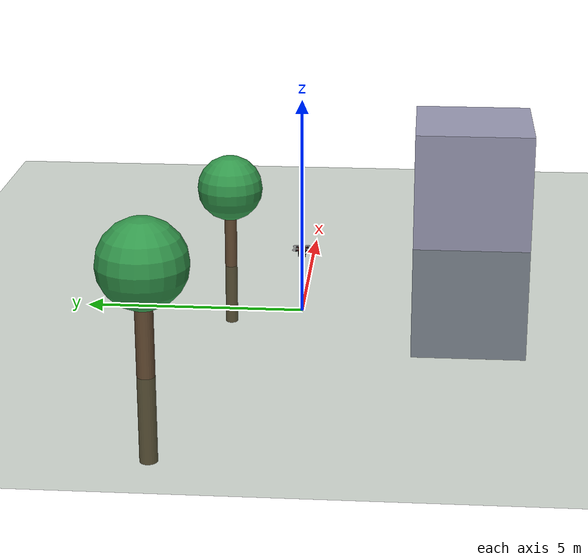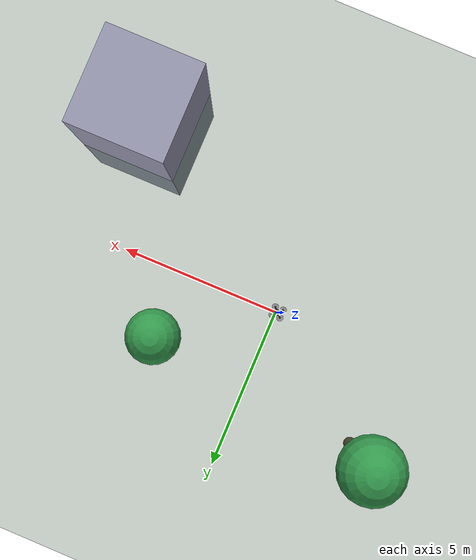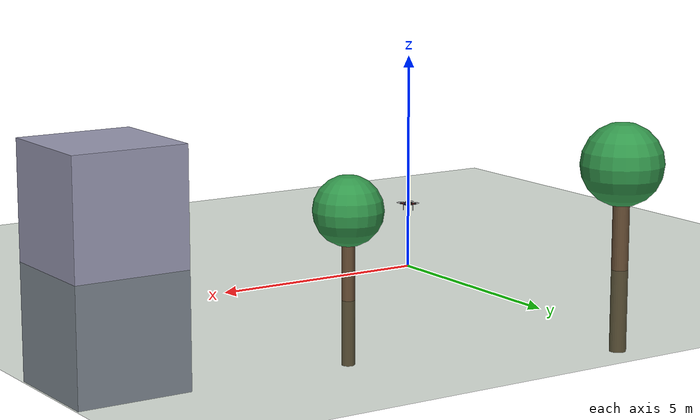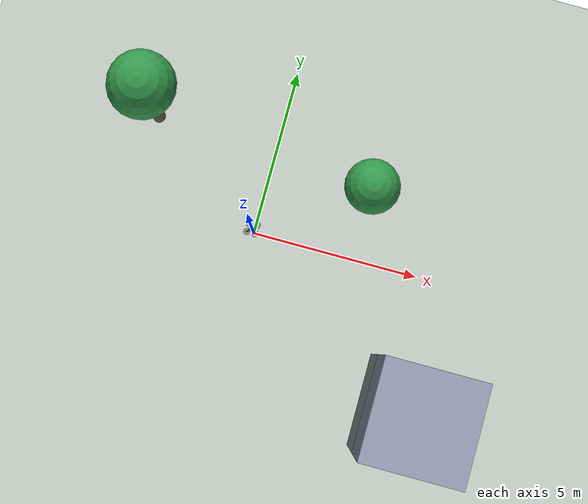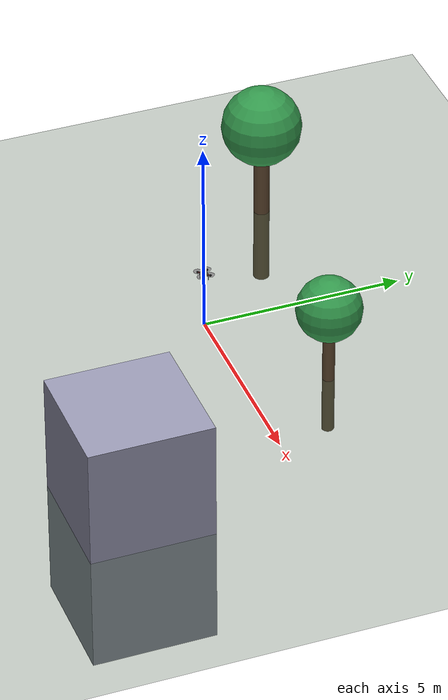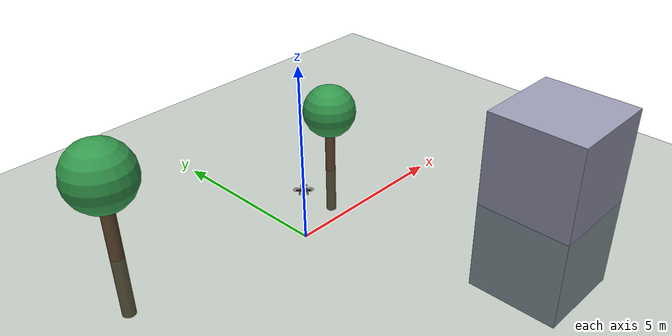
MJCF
<mujoco model="quadcopter_drone">
  <compiler angle="radian" coordinate="local" inertiafromgeom="true"/>

  <option timestep="0.002" gravity="0 0 -9.81" integrator="RK4">
    <flag warmstart="enable"/>
  </option>

  <visual>
    <rgba haze="0.15 0.25 0.35 1"/>
    <quality shadowsize="2048"/>
    <map stiffness="700"/>
  </visual>

  <asset>
    <!-- Textures for environment -->
    <texture type="skybox" builtin="gradient" rgb1="0.3 0.5 0.7" rgb2="0.1 0.2 0.3" width="512" height="512"/>
    <texture name="grid" type="2d" builtin="checker" rgb1="0.2 0.3 0.2" rgb2="0.3 0.4 0.3" width="512" height="512" mark="edge" markrgb="0.2 0.3 0.2"/>
    <texture name="grass" type="2d" builtin="flat" rgb1="0.3 0.5 0.3" width="512" height="512"/>

    <material name="grid" texture="grid" texrepeat="10 10" texuniform="true" reflectance="0.1"/>
    <material name="grass" texture="grass" texrepeat="20 20"/>
    <material name="drone_body" rgba="0.2 0.2 0.2 1" specular="0.5" shininess="0.3"/>
    <material name="drone_arm" rgba="0.8 0.1 0.1 1" specular="0.3" shininess="0.1"/>
    <material name="rotor" rgba="0.1 0.1 0.1 0.7" specular="0.8" shininess="0.5"/>
  </asset>

  <worldbody>
    <!-- Lighting -->
    <light directional="true" pos="0 0 10" dir="0 0 -1" diffuse="0.8 0.8 0.8" specular="0.2 0.2 0.2"/>
    <light directional="true" pos="5 5 10" dir="-1 -1 -2" diffuse="0.4 0.4 0.5"/>

    <!-- Ground plane -->
    <geom name="floor" type="plane" size="50 50 0.1" material="grid" condim="3" friction="1 0.5 0.005"/>

    <!-- Environment obstacles/landmarks -->
    <body name="tree1" pos="3 2 0">
      <geom type="cylinder" size="0.15 1.5" rgba="0.4 0.3 0.2 1" mass="0"/>
      <geom type="sphere" size="0.8" pos="0 0 2" rgba="0.2 0.6 0.3 1" mass="0"/>
    </body>

    <body name="tree2" pos="-4 3 0">
      <geom type="cylinder" size="0.2 2" rgba="0.4 0.3 0.2 1" mass="0"/>
      <geom type="sphere" size="1" pos="0 0 2.5" rgba="0.2 0.6 0.3 1" mass="0"/>
    </body>

    <body name="building" pos="6 -4 0">
      <geom type="box" size="1.5 1.5 3" rgba="0.6 0.6 0.7 1" mass="0"/>
    </body>

    <!-- Drone body -->
    <body name="drone" pos="0 0 1.5">
      <!-- Central body -->
      <freejoint name="drone_joint"/>
      <geom name="body_center" type="box" size="0.08 0.08 0.03" mass="0.4" material="drone_body"/>

      <!-- Camera mount (front indicator) -->
      <geom name="camera" type="cylinder" size="0.02 0.015" pos="0.09 0 0" quat="0.707 0 0.707 0" rgba="0.1 0.1 0.8 1" mass="0.05"/>

      <!-- Arms with motors -->
      <!-- Front-right arm -->
      <body name="arm1" pos="0.12 0.12 0">
        <geom name="arm1_geom" type="capsule" fromto="0 0 0 -0.12 -0.12 0" size="0.015" material="drone_arm" mass="0.08"/>
        <geom name="motor1" type="cylinder" size="0.025 0.015" pos="0 0 0" rgba="0.3 0.3 0.3 1" mass="0.05"/>
        <geom name="rotor1_geom" type="cylinder" size="0.1 0.002" pos="0 0 0.02" rgba="0.1 0.1 0.1 0.5" mass="0.02"/>
        <site name="rotor1" pos="0 0 0.02" size="0.01"/>
      </body>

      <!-- Front-left arm -->
      <body name="arm2" pos="-0.12 0.12 0">
        <geom name="arm2_geom" type="capsule" fromto="0 0 0 0.12 -0.12 0" size="0.015" material="drone_arm" mass="0.08"/>
        <geom name="motor2" type="cylinder" size="0.025 0.015" pos="0 0 0" rgba="0.3 0.3 0.3 1" mass="0.05"/>
        <geom name="rotor2_geom" type="cylinder" size="0.1 0.002" pos="0 0 0.02" rgba="0.1 0.1 0.1 0.5" mass="0.02"/>
        <site name="rotor2" pos="0 0 0.02" size="0.01"/>
      </body>

      <!-- Back-left arm -->
      <body name="arm3" pos="-0.12 -0.12 0">
        <geom name="arm3_geom" type="capsule" fromto="0 0 0 0.12 0.12 0" size="0.015" material="drone_arm" mass="0.08"/>
        <geom name="motor3" type="cylinder" size="0.025 0.015" pos="0 0 0" rgba="0.3 0.3 0.3 1" mass="0.05"/>
        <geom name="rotor3_geom" type="cylinder" size="0.1 0.002" pos="0 0 0.02" rgba="0.1 0.1 0.1 0.5" mass="0.02"/>
        <site name="rotor3" pos="0 0 0.02" size="0.01"/>
      </body>

      <!-- Back-right arm -->
      <body name="arm4" pos="0.12 -0.12 0">
        <geom name="arm4_geom" type="capsule" fromto="0 0 0 -0.12 0.12 0" size="0.015" material="drone_arm" mass="0.08"/>
        <geom name="motor4" type="cylinder" size="0.025 0.015" pos="0 0 0" rgba="0.3 0.3 0.3 1" mass="0.05"/>
        <geom name="rotor4_geom" type="cylinder" size="0.1 0.002" pos="0 0 0.02" rgba="0.1 0.1 0.1 0.5" mass="0.02"/>
        <site name="rotor4" pos="0 0 0.02" size="0.01"/>
      </body>

      <!-- Landing gear -->
      <geom name="leg1" type="capsule" fromto="0.08 0.08 -0.03 0.08 0.08 -0.15" size="0.008" rgba="0.2 0.2 0.2 1" mass="0.02"/>
      <geom name="leg2" type="capsule" fromto="-0.08 0.08 -0.03 -0.08 0.08 -0.15" size="0.008" rgba="0.2 0.2 0.2 1" mass="0.02"/>
      <geom name="leg3" type="capsule" fromto="-0.08 -0.08 -0.03 -0.08 -0.08 -0.15" size="0.008" rgba="0.2 0.2 0.2 1" mass="0.02"/>
      <geom name="leg4" type="capsule" fromto="0.08 -0.08 -0.03 0.08 -0.08 -0.15" size="0.008" rgba="0.2 0.2 0.2 1" mass="0.02"/>
    </body>
  </worldbody>

  <sensor>
    <!-- Position sensors -->
    <framepos name="drone_position" objtype="body" objname="drone"/>
    <framequat name="drone_orientation" objtype="body" objname="drone"/>

    <!-- Velocity sensors -->
    <framelinvel name="drone_linvel" objtype="body" objname="drone"/>
    <frameangvel name="drone_angvel" objtype="body" objname="drone"/>

    <!-- Accelerometer and gyroscope -->
    <accelerometer name="accel" site="rotor1"/>
    <gyro name="gyro" site="rotor1"/>
  </sensor>
</mujoco>
